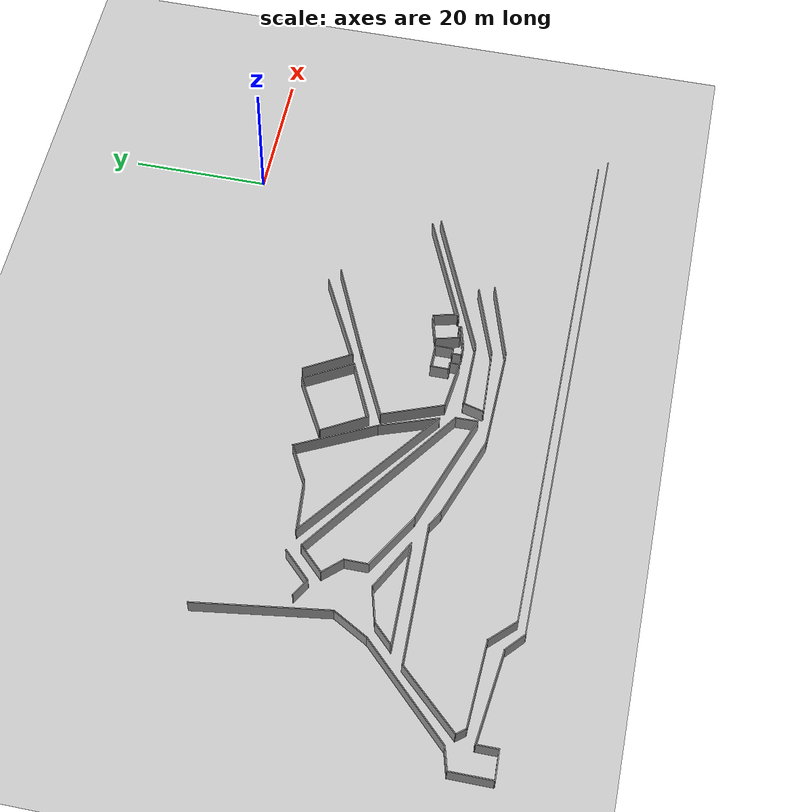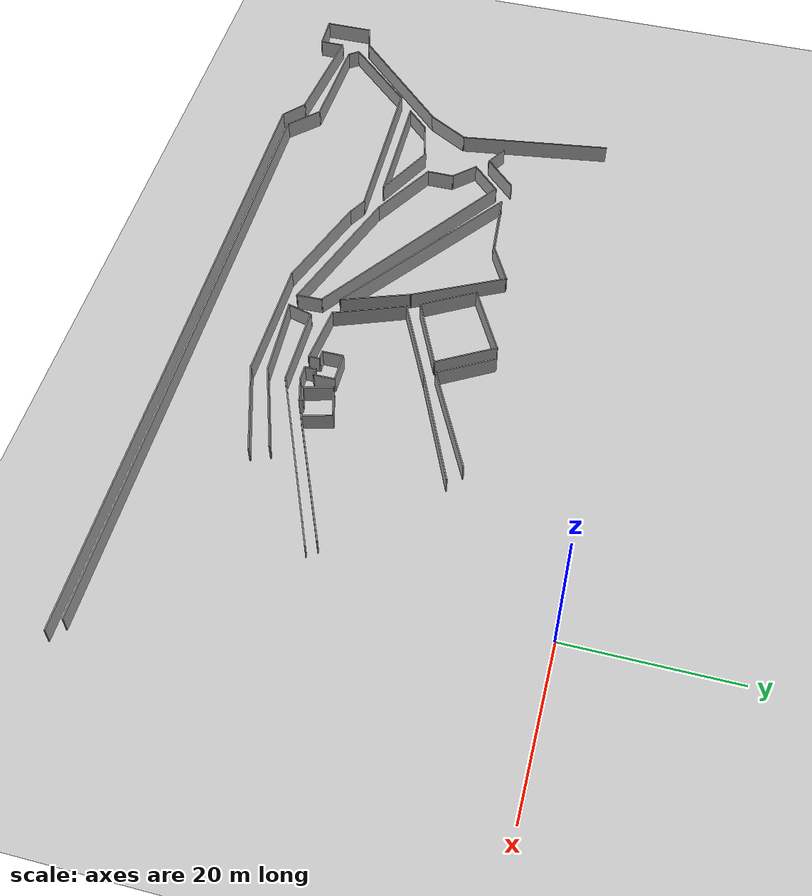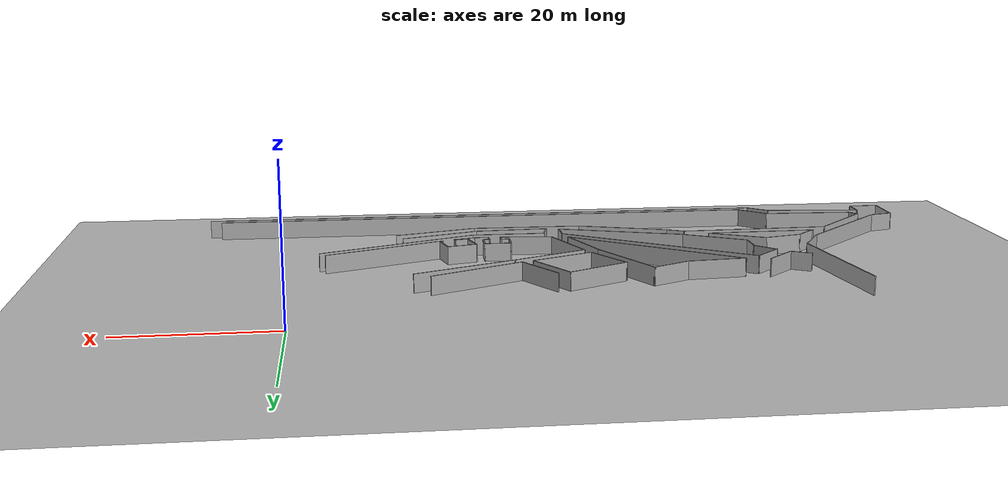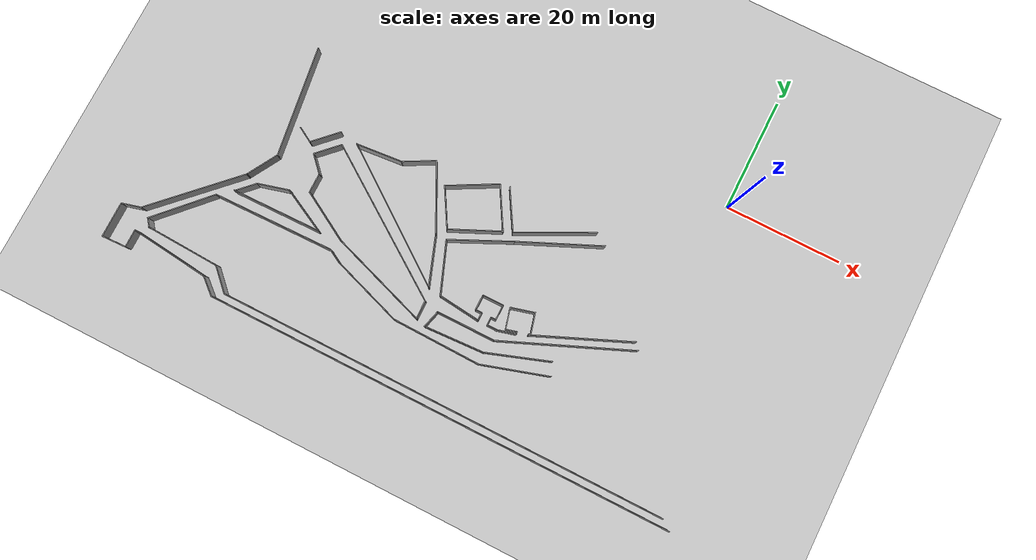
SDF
<sdf version="1.7">
 <world name="default">
  <model name="ground_plane">
   <static>1</static>
   <link name="link">
    <collision name="collision">
     <geometry><plane><normal>0 0 1</normal><size>100 100</size></plane></geometry>
     <surface><friction><ode><mu>100</mu><mu2>50</mu2></ode></friction></surface>
    </collision>
    <visual name="visual">
     <cast_shadows>0</cast_shadows>
     <geometry><plane><normal>0 0 1</normal><size>100 100</size></plane></geometry>
     <material>
      <script><uri>file://media/materials/scripts/gazebo.material</uri><name>Gazebo/Grey</name></script>
     </material>
    </visual>
   </link>
  </model>
  <model name="final_max_v1">
   <pose>-2.52311 0.689104 0 0 -0 0</pose>
   <link name="Wall_0">
    <collision name="Wall_0_Collision">
     <geometry><box><size>6.25 0.15 2.5</size></box></geometry>
     <pose>0 0 1.25 0 -0 0</pose>
    </collision>
    <visual name="Wall_0_Visual">
     <pose>0 0 1.25 0 -0 0</pose>
     <geometry><box><size>6.25 0.15 2.5</size></box></geometry>
     <material>
      <script><uri>file://media/materials/scripts/gazebo.material</uri><name>Gazebo/Grey</name></script>
      <ambient>1 1 1 1</ambient>
     </material>
     <meta><layer>0</layer></meta>
    </visual>
    <pose>-86.0864 -48.4326 0 0 -0 1.5708</pose>
   </link>
   <link name="Wall_100">
    <collision name="Wall_100_Collision">
     <geometry><box><size>19.4552 0.15 2.5</size></box></geometry>
     <pose>0 0 1.25 0 -0 0</pose>
    </collision>
    <visual name="Wall_100_Visual">
     <pose>0 0 1.25 0 -0 0</pose>
     <geometry><box><size>19.4552 0.15 2.5</size></box></geometry>
     <material>
      <script><uri>file://media/materials/scripts/gazebo.material</uri><name>Gazebo/Grey</name></script>
      <ambient>1 1 1 1</ambient>
     </material>
     <meta><layer>0</layer></meta>
    </visual>
    <pose>-68.6774 -17.2731 0 0 -0 1.7136</pose>
   </link>
   <link name="Wall_126">
    <collision name="Wall_126_Collision">
     <geometry><box><size>3.75 0.15 2.5</size></box></geometry>
     <pose>0 0 1.25 0 -0 0</pose>
    </collision>
    <visual name="Wall_126_Visual">
     <pose>0 0 1.25 0 -0 0</pose>
     <geometry><box><size>3.75 0.15 2.5</size></box></geometry>
     <material>
      <script><uri>file://media/materials/scripts/gazebo.material</uri><name>Gazebo/Grey</name></script>
      <ambient>1 1 1 1</ambient>
     </material>
     <meta><layer>0</layer></meta>
    </visual>
    <pose>-69.2284 -33.7829 0 0 -0 0.785398</pose>
   </link>
   <link name="Wall_127">
    <collision name="Wall_127_Collision">
     <geometry><box><size>5.5 0.15 2.5</size></box></geometry>
     <pose>0 0 1.25 0 -0 0</pose>
    </collision>
    <visual name="Wall_127_Visual">
     <pose>0 0 1.25 0 -0 0</pose>
     <geometry><box><size>5.5 0.15 2.5</size></box></geometry>
     <material>
      <script><uri>file://media/materials/scripts/gazebo.material</uri><name>Gazebo/Grey</name></script>
      <ambient>1 1 1 1</ambient>
     </material>
     <meta><layer>0</layer></meta>
    </visual>
    <pose>-65.3717 -31.8178 0 0 -0 0.261799</pose>
   </link>
   <link name="Wall_128">
    <collision name="Wall_128_Collision">
     <geometry><box><size>8.46258 0.15 2.5</size></box></geometry>
     <pose>0 0 1.25 0 -0 0</pose>
    </collision>
    <visual name="Wall_128_Visual">
     <pose>0 0 1.25 0 -0 0</pose>
     <geometry><box><size>8.46258 0.15 2.5</size></box></geometry>
     <material>
      <script><uri>file://media/materials/scripts/gazebo.material</uri><name>Gazebo/Grey</name></script>
      <ambient>1 1 1 1</ambient>
     </material>
     <meta><layer>0</layer></meta>
    </visual>
    <pose>-59.0888 -33.0206 0 0 -0 -0.47347</pose>
   </link>
   <link name="Wall_129">
    <collision name="Wall_129_Collision">
     <geometry><box><size>15.488 0.15 2.5</size></box></geometry>
     <pose>0 0 1.25 0 -0 0</pose>
    </collision>
    <visual name="Wall_129_Visual">
     <pose>0 0 1.25 0 -0 0</pose>
     <geometry><box><size>15.488 0.15 2.5</size></box></geometry>
     <material>
      <script><uri>file://media/materials/scripts/gazebo.material</uri><name>Gazebo/Grey</name></script>
      <ambient>1 1 1 1</ambient>
     </material>
     <meta><layer>0</layer></meta>
    </visual>
    <pose>-63.0581 -35.0458 0 0 -0 -3.12463</pose>
   </link>
   <link name="Wall_142">
    <collision name="Wall_142_Collision">
     <geometry><box><size>3 0.15 2.5</size></box></geometry>
     <pose>0 0 1.25 0 -0 0</pose>
    </collision>
    <visual name="Wall_142_Visual">
     <pose>0 0 1.25 0 -0 0</pose>
     <geometry><box><size>3 0.15 2.5</size></box></geometry>
     <material>
      <script><uri>file://media/materials/scripts/gazebo.material</uri><name>Gazebo/Grey</name></script>
      <ambient>1 1 1 1</ambient>
     </material>
     <meta><layer>0</layer></meta>
    </visual>
    <pose>-64.8763 -21.7565 0 0 -0 2.61799</pose>
   </link>
   <link name="Wall_2">
    <collision name="Wall_2_Collision">
     <geometry><box><size>3.25 0.15 2.5</size></box></geometry>
     <pose>0 0 1.25 0 -0 0</pose>
    </collision>
    <visual name="Wall_2_Visual">
     <pose>0 0 1.25 0 -0 0</pose>
     <geometry><box><size>3.25 0.15 2.5</size></box></geometry>
     <material>
      <script><uri>file://media/materials/scripts/gazebo.material</uri><name>Gazebo/Grey</name></script>
      <ambient>1 1 1 1</ambient>
     </material>
     <meta><layer>0</layer></meta>
    </visual>
    <pose>-81.869 -49.7753 0 0 -0 1.5708</pose>
   </link>
   <link name="Wall_3">
    <collision name="Wall_3_Collision">
     <geometry><box><size>13.848 0.15 2.5</size></box></geometry>
     <pose>0 0 1.25 0 -0 0</pose>
    </collision>
    <visual name="Wall_3_Visual">
     <pose>0 0 1.25 0 -0 0</pose>
     <geometry><box><size>13.848 0.15 2.5</size></box></geometry>
     <material>
      <script><uri>file://media/materials/scripts/gazebo.material</uri><name>Gazebo/Grey</name></script>
      <ambient>1 1 1 1</ambient>
     </material>
     <meta><layer>0</layer></meta>
    </visual>
    <pose>-75.0629 -48.9907 0 0 -0 -0.111993</pose>
   </link>
   <link name="Wall_4">
    <collision name="Wall_4_Collision">
     <geometry><box><size>3.68163 0.15 2.5</size></box></geometry>
     <pose>0 0 1.25 0 -0 0</pose>
    </collision>
    <visual name="Wall_4_Visual">
     <pose>0 0 1.25 0 -0 0</pose>
     <geometry><box><size>3.68163 0.15 2.5</size></box></geometry>
     <material>
      <script><uri>file://media/materials/scripts/gazebo.material</uri><name>Gazebo/Grey</name></script>
      <ambient>1 1 1 1</ambient>
     </material>
     <meta><layer>0</layer></meta>
    </visual>
    <pose>-66.923 -50.9134 0 0 -0 -0.71465</pose>
   </link>
   <link name="Wall_478">
    <collision name="Wall_478_Collision">
     <geometry><box><size>5.5 0.15 2.5</size></box></geometry>
     <pose>0 0 1.25 0 -0 0</pose>
    </collision>
    <visual name="Wall_478_Visual">
     <pose>0 0 1.25 0 -0 0</pose>
     <geometry><box><size>5.5 0.15 2.5</size></box></geometry>
     <material>
      <script><uri>file://media/materials/scripts/gazebo.material</uri><name>Gazebo/Grey</name></script>
      <ambient>1 1 1 1</ambient>
     </material>
     <meta><layer>0</layer></meta>
    </visual>
    <pose>-61.7507 -20.5775 0 0 -0 0.785398</pose>
   </link>
   <link name="Wall_481">
    <collision name="Wall_481_Collision">
     <geometry><box><size>5 0.15 2.5</size></box></geometry>
     <pose>0 0 1.25 0 -0 0</pose>
    </collision>
    <visual name="Wall_481_Visual">
     <pose>0 0 1.25 0 -0 0</pose>
     <geometry><box><size>5 0.15 2.5</size></box></geometry>
     <material>
      <script><uri>file://media/materials/scripts/gazebo.material</uri><name>Gazebo/Grey</name></script>
      <ambient>1 1 1 1</ambient>
     </material>
     <meta><layer>0</layer></meta>
    </visual>
    <pose>-60.4316 -22.231 0 0 -0 0.785398</pose>
   </link>
   <link name="Wall_482">
    <collision name="Wall_482_Collision">
     <geometry><box><size>29.4407 0.15 2.5</size></box></geometry>
     <pose>0 0 1.25 0 -0 0</pose>
    </collision>
    <visual name="Wall_482_Visual">
     <pose>0 0 1.25 0 -0 0</pose>
     <geometry><box><size>29.4407 0.15 2.5</size></box></geometry>
     <material>
      <script><uri>file://media/materials/scripts/gazebo.material</uri><name>Gazebo/Grey</name></script>
      <ambient>1 1 1 1</ambient>
     </material>
     <meta><layer>0</layer></meta>
    </visual>
    <pose>-46.6969 -28.8832 0 0 -0 -0.60809</pose>
   </link>
   <link name="Wall_484">
    <collision name="Wall_484_Collision">
     <geometry><box><size>3.28141 0.15 2.5</size></box></geometry>
     <pose>0 0 1.25 0 -0 0</pose>
    </collision>
    <visual name="Wall_484_Visual">
     <pose>0 0 1.25 0 -0 0</pose>
     <geometry><box><size>3.28141 0.15 2.5</size></box></geometry>
     <material>
      <script><uri>file://media/materials/scripts/gazebo.material</uri><name>Gazebo/Grey</name></script>
      <ambient>1 1 1 1</ambient>
     </material>
     <meta><layer>0</layer></meta>
    </visual>
    <pose>-34.6377 -38.8153 0 0 -0 1.59579</pose>
   </link>
   <link name="Wall_486">
    <collision name="Wall_486_Collision">
     <geometry><box><size>18.0929 0.15 2.5</size></box></geometry>
     <pose>0 0 1.25 0 -0 0</pose>
    </collision>
    <visual name="Wall_486_Visual">
     <pose>0 0 1.25 0 -0 0</pose>
     <geometry><box><size>18.0929 0.15 2.5</size></box></geometry>
     <material>
      <script><uri>file://media/materials/scripts/gazebo.material</uri><name>Gazebo/Grey</name></script>
      <ambient>1 1 1 1</ambient>
     </material>
     <meta><layer>0</layer></meta>
    </visual>
    <pose>-43.0899 -37.4849 0 0 -0 2.81295</pose>
   </link>
   <link name="Wall_487">
    <collision name="Wall_487_Collision">
     <geometry><box><size>9.5 0.15 2.5</size></box></geometry>
     <pose>0 0 1.25 0 -0 0</pose>
    </collision>
    <visual name="Wall_487_Visual">
     <pose>0 0 1.25 0 -0 0</pose>
     <geometry><box><size>9.5 0.15 2.5</size></box></geometry>
     <material>
      <script><uri>file://media/materials/scripts/gazebo.material</uri><name>Gazebo/Grey</name></script>
      <ambient>1 1 1 1</ambient>
     </material>
     <meta><layer>0</layer></meta>
    </visual>
    <pose>-55.6298 -32.2518 0 0 -0 2.61799</pose>
   </link>
   <link name="Wall_488">
    <collision name="Wall_488_Collision">
     <geometry><box><size>3.5 0.15 2.5</size></box></geometry>
     <pose>0 0 1.25 0 -0 0</pose>
    </collision>
    <visual name="Wall_488_Visual">
     <pose>0 0 1.25 0 -0 0</pose>
     <geometry><box><size>3.5 0.15 2.5</size></box></geometry>
     <material>
      <script><uri>file://media/materials/scripts/gazebo.material</uri><name>Gazebo/Grey</name></script>
      <ambient>1 1 1 1</ambient>
     </material>
     <meta><layer>0</layer></meta>
    </visual>
    <pose>-59.6785 -28.2393 0 0 -0 1.5708</pose>
   </link>
   <link name="Wall_491">
    <collision name="Wall_491_Collision">
     <geometry><box><size>3.74817 0.15 2.5</size></box></geometry>
     <pose>0 0 1.25 0 -0 0</pose>
    </collision>
    <visual name="Wall_491_Visual">
     <pose>0 0 1.25 0 -0 0</pose>
     <geometry><box><size>3.74817 0.15 2.5</size></box></geometry>
     <material>
      <script><uri>file://media/materials/scripts/gazebo.material</uri><name>Gazebo/Grey</name></script>
      <ambient>1 1 1 1</ambient>
     </material>
     <meta><layer>0</layer></meta>
    </visual>
    <pose>-60.9124 -25.255 0 0 -0 -0.814998</pose>
   </link>
   <link name="Wall_493">
    <collision name="Wall_493_Collision">
     <geometry><box><size>3.25 0.15 2.5</size></box></geometry>
     <pose>0 0 1.25 0 -0 0</pose>
    </collision>
    <visual name="Wall_493_Visual">
     <pose>0 0 1.25 0 -0 0</pose>
     <geometry><box><size>3.25 0.15 2.5</size></box></geometry>
     <material>
      <script><uri>file://media/materials/scripts/gazebo.material</uri><name>Gazebo/Grey</name></script>
      <ambient>1 1 1 1</ambient>
     </material>
     <meta><layer>0</layer></meta>
    </visual>
    <pose>-32.4716 -39.3814 0 0 -0 1.309</pose>
   </link>
   <link name="Wall_494">
    <collision name="Wall_494_Collision">
     <geometry><box><size>10.25 0.15 2.5</size></box></geometry>
     <pose>0 0 1.25 0 -0 0</pose>
    </collision>
    <visual name="Wall_494_Visual">
     <pose>0 0 1.25 0 -0 0</pose>
     <geometry><box><size>10.25 0.15 2.5</size></box></geometry>
     <material>
      <script><uri>file://media/materials/scripts/gazebo.material</uri><name>Gazebo/Grey</name></script>
      <ambient>1 1 1 1</ambient>
     </material>
     <meta><layer>0</layer></meta>
    </visual>
    <pose>-27.0205 -37.8842 0 0 -0 0</pose>
   </link>
   <link name="Wall_496">
    <collision name="Wall_496_Collision">
     <geometry><box><size>23.1194 0.15 2.5</size></box></geometry>
     <pose>0 0 1.25 0 -0 0</pose>
    </collision>
    <visual name="Wall_496_Visual">
     <pose>0 0 1.25 0 -0 0</pose>
     <geometry><box><size>23.1194 0.15 2.5</size></box></geometry>
     <material>
      <script><uri>file://media/materials/scripts/gazebo.material</uri><name>Gazebo/Grey</name></script>
      <ambient>1 1 1 1</ambient>
     </material>
     <meta><layer>0</layer></meta>
    </visual>
    <pose>-11.3836 -33.4327 0 0 -0 0.398025</pose>
   </link>
   <link name="Wall_501">
    <collision name="Wall_501_Collision">
     <geometry><box><size>10.3347 0.15 2.5</size></box></geometry>
     <pose>0 0 1.25 0 -0 0</pose>
    </collision>
    <visual name="Wall_501_Visual">
     <pose>0 0 1.25 0 -0 0</pose>
     <geometry><box><size>10.3347 0.15 2.5</size></box></geometry>
     <material>
      <script><uri>file://media/materials/scripts/gazebo.material</uri><name>Gazebo/Grey</name></script>
      <ambient>1 1 1 1</ambient>
     </material>
     <meta><layer>0</layer></meta>
    </visual>
    <pose>-27.7872 -40.6165 0 0 -0 0.051487</pose>
   </link>
   <link name="Wall_502">
    <collision name="Wall_502_Collision">
     <geometry><box><size>11.2662 0.15 2.5</size></box></geometry>
     <pose>0 0 1.25 0 -0 0</pose>
    </collision>
    <visual name="Wall_502_Visual">
     <pose>0 0 1.25 0 -0 0</pose>
     <geometry><box><size>11.2662 0.15 2.5</size></box></geometry>
     <material>
      <script><uri>file://media/materials/scripts/gazebo.material</uri><name>Gazebo/Grey</name></script>
      <ambient>1 1 1 1</ambient>
     </material>
     <meta><layer>0</layer></meta>
    </visual>
    <pose>-17.4514 -38.5302 0 0 -0 0.334408</pose>
   </link>
   <link name="Wall_510">
    <collision name="Wall_510_Collision">
     <geometry><box><size>7.39808 0.15 2.5</size></box></geometry>
     <pose>0 0 1.25 0 -0 0</pose>
    </collision>
    <visual name="Wall_510_Visual">
     <pose>0 0 1.25 0 -0 0</pose>
     <geometry><box><size>7.39808 0.15 2.5</size></box></geometry>
     <material>
      <script><uri>file://media/materials/scripts/gazebo.material</uri><name>Gazebo/Grey</name></script>
      <ambient>1 1 1 1</ambient>
     </material>
     <meta><layer>0</layer></meta>
    </visual>
    <pose>-29.3327 -35.7676 0 0 -0 3.03199</pose>
   </link>
   <link name="Wall_512">
    <collision name="Wall_512_Collision">
     <geometry><box><size>1.5 0.15 2.5</size></box></geometry>
     <pose>0 0 1.25 0 -0 0</pose>
    </collision>
    <visual name="Wall_512_Visual">
     <pose>0 0 1.25 0 -0 0</pose>
     <geometry><box><size>1.5 0.15 2.5</size></box></geometry>
     <material>
      <script><uri>file://media/materials/scripts/gazebo.material</uri><name>Gazebo/Grey</name></script>
      <ambient>1 1 1 1</ambient>
     </material>
     <meta><layer>0</layer></meta>
    </visual>
    <pose>-25.7305 -35.489 0 0 -0 1.5708</pose>
   </link>
   <link name="Wall_513">
    <collision name="Wall_513_Collision">
     <geometry><box><size>1.25 0.15 2.5</size></box></geometry>
     <pose>0 0 1.25 0 -0 0</pose>
    </collision>
    <visual name="Wall_513_Visual">
     <pose>0 0 1.25 0 -0 0</pose>
     <geometry><box><size>1.25 0.15 2.5</size></box></geometry>
     <material>
      <script><uri>file://media/materials/scripts/gazebo.material</uri><name>Gazebo/Grey</name></script>
      <ambient>1 1 1 1</ambient>
     </material>
     <meta><layer>0</layer></meta>
    </visual>
    <pose>-26.2805 -34.814 0 0 -0 3.14159</pose>
   </link>
   <link name="Wall_514">
    <collision name="Wall_514_Collision">
     <geometry><box><size>2.75 0.15 2.5</size></box></geometry>
     <pose>0 0 1.25 0 -0 0</pose>
    </collision>
    <visual name="Wall_514_Visual">
     <pose>0 0 1.25 0 -0 0</pose>
     <geometry><box><size>2.75 0.15 2.5</size></box></geometry>
     <material>
      <script><uri>file://media/materials/scripts/gazebo.material</uri><name>Gazebo/Grey</name></script>
      <ambient>1 1 1 1</ambient>
     </material>
     <meta><layer>0</layer></meta>
    </visual>
    <pose>-26.8305 -33.514 0 0 -0 1.5708</pose>
   </link>
   <link name="Wall_515">
    <collision name="Wall_515_Collision">
     <geometry><box><size>3.75 0.15 2.5</size></box></geometry>
     <pose>0 0 1.25 0 -0 0</pose>
    </collision>
    <visual name="Wall_515_Visual">
     <pose>0 0 1.25 0 -0 0</pose>
     <geometry><box><size>3.75 0.15 2.5</size></box></geometry>
     <material>
      <script><uri>file://media/materials/scripts/gazebo.material</uri><name>Gazebo/Grey</name></script>
      <ambient>1 1 1 1</ambient>
     </material>
     <meta><layer>0</layer></meta>
    </visual>
    <pose>-25.0305 -32.214 0 0 -0 0</pose>
   </link>
   <link name="Wall_525">
    <collision name="Wall_525_Collision">
     <geometry><box><size>2.75 0.15 2.5</size></box></geometry>
     <pose>0 0 1.25 0 -0 0</pose>
    </collision>
    <visual name="Wall_525_Visual">
     <pose>0 0 1.25 0 -0 0</pose>
     <geometry><box><size>2.75 0.15 2.5</size></box></geometry>
     <material>
      <script><uri>file://media/materials/scripts/gazebo.material</uri><name>Gazebo/Grey</name></script>
      <ambient>1 1 1 1</ambient>
     </material>
     <meta><layer>0</layer></meta>
    </visual>
    <pose>-23.2305 -33.514 0 0 -0 -1.5708</pose>
   </link>
   <link name="Wall_526">
    <collision name="Wall_526_Collision">
     <geometry><box><size>1 0.15 2.5</size></box></geometry>
     <pose>0 0 1.25 0 -0 0</pose>
    </collision>
    <visual name="Wall_526_Visual">
     <pose>0 0 1.25 0 -0 0</pose>
     <geometry><box><size>1 0.15 2.5</size></box></geometry>
     <material>
      <script><uri>file://media/materials/scripts/gazebo.material</uri><name>Gazebo/Grey</name></script>
      <ambient>1 1 1 1</ambient>
     </material>
     <meta><layer>0</layer></meta>
    </visual>
    <pose>-23.6555 -34.814 0 0 -0 3.14159</pose>
   </link>
   <link name="Wall_527">
    <collision name="Wall_527_Collision">
     <geometry><box><size>0.15 0.15 2.5</size></box></geometry>
     <pose>0 0 1.25 0 -0 0</pose>
    </collision>
    <visual name="Wall_527_Visual">
     <pose>0 0 1.25 0 -0 0</pose>
     <geometry><box><size>0.15 0.15 2.5</size></box></geometry>
     <material>
      <script><uri>file://media/materials/scripts/gazebo.material</uri><name>Gazebo/Grey</name></script>
      <ambient>0 0 0 1</ambient>
     </material>
     <meta><layer>0</layer></meta>
    </visual>
    <pose>-24.0805 -34.814 0 0 -0 0</pose>
   </link>
   <link name="Wall_528">
    <collision name="Wall_528_Collision">
     <geometry><box><size>1.5 0.15 2.5</size></box></geometry>
     <pose>0 0 1.25 0 -0 0</pose>
    </collision>
    <visual name="Wall_528_Visual">
     <pose>0 0 1.25 0 -0 0</pose>
     <geometry><box><size>1.5 0.15 2.5</size></box></geometry>
     <material>
      <script><uri>file://media/materials/scripts/gazebo.material</uri><name>Gazebo/Grey</name></script>
      <ambient>1 1 1 1</ambient>
     </material>
     <meta><layer>0</layer></meta>
    </visual>
    <pose>-24.0805 -35.489 0 0 -0 -1.5708</pose>
   </link>
   <link name="Wall_530">
    <collision name="Wall_530_Collision">
     <geometry><box><size>2 0.15 2.5</size></box></geometry>
     <pose>0 0 1.25 0 -0 0</pose>
    </collision>
    <visual name="Wall_530_Visual">
     <pose>0 0 1.25 0 -0 0</pose>
     <geometry><box><size>2 0.15 2.5</size></box></geometry>
     <material>
      <script><uri>file://media/materials/scripts/gazebo.material</uri><name>Gazebo/Grey</name></script>
      <ambient>1 1 1 1</ambient>
     </material>
     <meta><layer>0</layer></meta>
    </visual>
    <pose>-23.1555 -36.164 0 0 -0 0</pose>
   </link>
   <link name="Wall_539">
    <collision name="Wall_539_Collision">
     <geometry><box><size>14.8503 0.15 2.5</size></box></geometry>
     <pose>0 0 1.25 0 -0 0</pose>
    </collision>
    <visual name="Wall_539_Visual">
     <pose>0 0 1.25 0 -0 0</pose>
     <geometry><box><size>14.8503 0.15 2.5</size></box></geometry>
     <material>
      <script><uri>file://media/materials/scripts/gazebo.material</uri><name>Gazebo/Grey</name></script>
      <ambient>1 1 1 1</ambient>
     </material>
     <meta><layer>0</layer></meta>
    </visual>
    <pose>-19.5401 -19.1375 0 0 -0 0.41761</pose>
   </link>
   <link name="Wall_546">
    <collision name="Wall_546_Collision">
     <geometry><box><size>13.8284 0.15 2.5</size></box></geometry>
     <pose>0 0 1.25 0 -0 0</pose>
    </collision>
    <visual name="Wall_546_Visual">
     <pose>0 0 1.25 0 -0 0</pose>
     <geometry><box><size>13.8284 0.15 2.5</size></box></geometry>
     <material>
      <script><uri>file://media/materials/scripts/gazebo.material</uri><name>Gazebo/Grey</name></script>
      <ambient>1 1 1 1</ambient>
     </material>
     <meta><layer>0</layer></meta>
    </visual>
    <pose>-21.0345 -17.8189 0 0 -0 0.467525</pose>
   </link>
   <link name="Wall_552">
    <collision name="Wall_552_Collision">
     <geometry><box><size>9.30829 0.15 2.5</size></box></geometry>
     <pose>0 0 1.25 0 -0 0</pose>
    </collision>
    <visual name="Wall_552_Visual">
     <pose>0 0 1.25 0 -0 0</pose>
     <geometry><box><size>9.30829 0.15 2.5</size></box></geometry>
     <material>
      <script><uri>file://media/materials/scripts/gazebo.material</uri><name>Gazebo/Grey</name></script>
      <ambient>1 1 1 1</ambient>
     </material>
     <meta><layer>0</layer></meta>
    </visual>
    <pose>-34.5805 -31.0979 0 0 -0 -1.20324</pose>
   </link>
   <link name="Wall_556">
    <collision name="Wall_556_Collision">
     <geometry><box><size>11.1725 0.15 2.5</size></box></geometry>
     <pose>0 0 1.25 0 -0 0</pose>
    </collision>
    <visual name="Wall_556_Visual">
     <pose>0 0 1.25 0 -0 0</pose>
     <geometry><box><size>11.1725 0.15 2.5</size></box></geometry>
     <material>
      <script><uri>file://media/materials/scripts/gazebo.material</uri><name>Gazebo/Grey</name></script>
      <ambient>1 1 1 1</ambient>
     </material>
     <meta><layer>0</layer></meta>
    </visual>
    <pose>-31.2423 -24.4715 0 0 -0 -2.70048</pose>
   </link>
   <link name="Wall_559">
    <collision name="Wall_559_Collision">
     <geometry><box><size>7.67149 0.15 2.5</size></box></geometry>
     <pose>0 0 1.25 0 -0 0</pose>
    </collision>
    <visual name="Wall_559_Visual">
     <pose>0 0 1.25 0 -0 0</pose>
     <geometry><box><size>7.67149 0.15 2.5</size></box></geometry>
     <material>
      <script><uri>file://media/materials/scripts/gazebo.material</uri><name>Gazebo/Grey</name></script>
      <ambient>1 1 1 1</ambient>
     </material>
     <meta><layer>0</layer></meta>
    </visual>
    <pose>-29.0376 -17.6544 0 0 -0 2.09976</pose>
   </link>
   <link name="Wall_564">
    <collision name="Wall_564_Collision">
     <geometry><box><size>9.25649 0.15 2.5</size></box></geometry>
     <pose>0 0 1.25 0 -0 0</pose>
    </collision>
    <visual name="Wall_564_Visual">
     <pose>0 0 1.25 0 -0 0</pose>
     <geometry><box><size>9.25649 0.15 2.5</size></box></geometry>
     <material>
      <script><uri>file://media/materials/scripts/gazebo.material</uri><name>Gazebo/Grey</name></script>
      <ambient>1 1 1 1</ambient>
     </material>
     <meta><layer>0</layer></meta>
    </visual>
    <pose>-32.7796 -23.3619 0 0 -0 0.42944</pose>
   </link>
   <link name="Wall_565">
    <collision name="Wall_565_Collision">
     <geometry><box><size>8 0.15 2.5</size></box></geometry>
     <pose>0 0 1.25 0 -0 0</pose>
    </collision>
    <visual name="Wall_565_Visual">
     <pose>0 0 1.25 0 -0 0</pose>
     <geometry><box><size>8 0.15 2.5</size></box></geometry>
     <material>
      <script><uri>file://media/materials/scripts/gazebo.material</uri><name>Gazebo/Grey</name></script>
      <ambient>1 1 1 1</ambient>
     </material>
     <meta><layer>0</layer></meta>
    </visual>
    <pose>-30.6023 -18.0669 0 0 -0 2.0944</pose>
   </link>
   <link name="Wall_566">
    <collision name="Wall_566_Collision">
     <geometry><box><size>9.23539 0.15 2.5</size></box></geometry>
     <pose>0 0 1.25 0 -0 0</pose>
    </collision>
    <visual name="Wall_566_Visual">
     <pose>0 0 1.25 0 -0 0</pose>
     <geometry><box><size>9.23539 0.15 2.5</size></box></geometry>
     <material>
      <script><uri>file://media/materials/scripts/gazebo.material</uri><name>Gazebo/Grey</name></script>
      <ambient>1 1 1 1</ambient>
     </material>
     <meta><layer>0</layer></meta>
    </visual>
    <pose>-36.5605 -16.8289 0 0 -0 -2.6458</pose>
   </link>
   <link name="Wall_567">
    <collision name="Wall_567_Collision">
     <geometry><box><size>7.39646 0.15 2.5</size></box></geometry>
     <pose>0 0 1.25 0 -0 0</pose>
    </collision>
    <visual name="Wall_567_Visual">
     <pose>0 0 1.25 0 -0 0</pose>
     <geometry><box><size>7.39646 0.15 2.5</size></box></geometry>
     <material>
      <script><uri>file://media/materials/scripts/gazebo.material</uri><name>Gazebo/Grey</name></script>
      <ambient>1 1 1 1</ambient>
     </material>
     <meta><layer>0</layer></meta>
    </visual>
    <pose>-38.7378 -22.1238 0 0 -0 -1.04503</pose>
   </link>
   <link name="Wall_569">
    <collision name="Wall_569_Collision">
     <geometry><box><size>26.6614 0.15 2.5</size></box></geometry>
     <pose>0 0 1.25 0 -0 0</pose>
    </collision>
    <visual name="Wall_569_Visual">
     <pose>0 0 1.25 0 -0 0</pose>
     <geometry><box><size>26.6614 0.15 2.5</size></box></geometry>
     <material>
      <script><uri>file://media/materials/scripts/gazebo.material</uri><name>Gazebo/Grey</name></script>
      <ambient>1 1 1 1</ambient>
     </material>
     <meta><layer>0</layer></meta>
    </visual>
    <pose>-45.8954 -27.1535 0 0 -0 -0.634161</pose>
   </link>
   <link name="Wall_570">
    <collision name="Wall_570_Collision">
     <geometry><box><size>8.86336 0.15 2.5</size></box></geometry>
     <pose>0 0 1.25 0 -0 0</pose>
    </collision>
    <visual name="Wall_570_Visual">
     <pose>0 0 1.25 0 -0 0</pose>
     <geometry><box><size>8.86336 0.15 2.5</size></box></geometry>
     <material>
      <script><uri>file://media/materials/scripts/gazebo.material</uri><name>Gazebo/Grey</name></script>
      <ambient>1 1 1 1</ambient>
     </material>
     <meta><layer>0</layer></meta>
    </visual>
    <pose>-36.6872 -30.9064 0 0 -0 1.91501</pose>
   </link>
   <link name="Wall_571">
    <collision name="Wall_571_Collision">
     <geometry><box><size>12.3657 0.15 2.5</size></box></geometry>
     <pose>0 0 1.25 0 -0 0</pose>
    </collision>
    <visual name="Wall_571_Visual">
     <pose>0 0 1.25 0 -0 0</pose>
     <geometry><box><size>12.3657 0.15 2.5</size></box></geometry>
     <material>
      <script><uri>file://media/materials/scripts/gazebo.material</uri><name>Gazebo/Grey</name></script>
      <ambient>1 1 1 1</ambient>
     </material>
     <meta><layer>0</layer></meta>
    </visual>
    <pose>-40.9044 -21.35 0 0 -0 2.03728</pose>
   </link>
   <link name="Wall_572">
    <collision name="Wall_572_Collision">
     <geometry><box><size>5.86248 0.15 2.5</size></box></geometry>
     <pose>0 0 1.25 0 -0 0</pose>
    </collision>
    <visual name="Wall_572_Visual">
     <pose>0 0 1.25 0 -0 0</pose>
     <geometry><box><size>5.86248 0.15 2.5</size></box></geometry>
     <material>
      <script><uri>file://media/materials/scripts/gazebo.material</uri><name>Gazebo/Grey</name></script>
      <ambient>1 1 1 1</ambient>
     </material>
     <meta><layer>0</layer></meta>
    </visual>
    <pose>-46.1662 -17.2489 0 0 -0 -2.64765</pose>
   </link>
   <link name="Wall_573">
    <collision name="Wall_573_Collision">
     <geometry><box><size>8.07338 0.15 2.5</size></box></geometry>
     <pose>0 0 1.25 0 -0 0</pose>
    </collision>
    <visual name="Wall_573_Visual">
     <pose>0 0 1.25 0 -0 0</pose>
     <geometry><box><size>8.07338 0.15 2.5</size></box></geometry>
     <material>
      <script><uri>file://media/materials/scripts/gazebo.material</uri><name>Gazebo/Grey</name></script>
      <ambient>1 1 1 1</ambient>
     </material>
     <meta><layer>0</layer></meta>
    </visual>
    <pose>-52.6274 -18.9513 0 0 -0 -3.05358</pose>
   </link>
   <link name="Wall_6">
    <collision name="Wall_6_Collision">
     <geometry><box><size>81.25 0.15 2.5</size></box></geometry>
     <pose>0 0 1.25 0 -0 0</pose>
    </collision>
    <visual name="Wall_6_Visual">
     <pose>0 0 1.25 0 -0 0</pose>
     <geometry><box><size>81.25 0.15 2.5</size></box></geometry>
     <material>
      <script><uri>file://media/materials/scripts/gazebo.material</uri><name>Gazebo/Grey</name></script>
      <ambient>1 1 1 1</ambient>
     </material>
     <meta><layer>0</layer></meta>
    </visual>
    <pose>-25.0393 -52.0706 0 0 -0 0</pose>
   </link>
   <link name="Wall_645">
    <collision name="Wall_645_Collision">
     <geometry><box><size>3 0.15 2.5</size></box></geometry>
     <pose>0 0 1.25 0 -0 0</pose>
    </collision>
    <visual name="Wall_645_Visual">
     <pose>0 0 1.25 0 -0 0</pose>
     <geometry><box><size>3 0.15 2.5</size></box></geometry>
     <material>
      <script><uri>file://media/materials/scripts/gazebo.material</uri><name>Gazebo/Grey</name></script>
      <ambient>1 1 1 1</ambient>
     </material>
     <meta><layer>0</layer></meta>
    </visual>
    <pose>-20.6198 -35.7137 0 0 -0 0.261799</pose>
   </link>
   <link name="Wall_646">
    <collision name="Wall_646_Collision">
     <geometry><box><size>0.5 0.15 2.5</size></box></geometry>
     <pose>0 0 1.25 0 -0 0</pose>
    </collision>
    <visual name="Wall_646_Visual">
     <pose>0 0 1.25 0 -0 0</pose>
     <geometry><box><size>0.5 0.15 2.5</size></box></geometry>
     <material>
      <script><uri>file://media/materials/scripts/gazebo.material</uri><name>Gazebo/Grey</name></script>
      <ambient>1 1 1 1</ambient>
     </material>
     <meta><layer>0</layer></meta>
    </visual>
    <pose>-19.2886 -35.1758 0 0 -0 1.8326</pose>
   </link>
   <link name="Wall_647">
    <collision name="Wall_647_Collision">
     <geometry><box><size>2 0.15 2.5</size></box></geometry>
     <pose>0 0 1.25 0 -0 0</pose>
    </collision>
    <visual name="Wall_647_Visual">
     <pose>0 0 1.25 0 -0 0</pose>
     <geometry><box><size>2 0.15 2.5</size></box></geometry>
     <material>
      <script><uri>file://media/materials/scripts/gazebo.material</uri><name>Gazebo/Grey</name></script>
      <ambient>1 1 1 1</ambient>
     </material>
     <meta><layer>0</layer></meta>
    </visual>
    <pose>-20.2274 -35.2462 0 0 -0 -2.87979</pose>
   </link>
   <link name="Wall_648">
    <collision name="Wall_648_Collision">
     <geometry><box><size>3.75 0.15 2.5</size></box></geometry>
     <pose>0 0 1.25 0 -0 0</pose>
    </collision>
    <visual name="Wall_648_Visual">
     <pose>0 0 1.25 0 -0 0</pose>
     <geometry><box><size>3.75 0.15 2.5</size></box></geometry>
     <material>
      <script><uri>file://media/materials/scripts/gazebo.material</uri><name>Gazebo/Grey</name></script>
      <ambient>1 1 1 1</ambient>
     </material>
     <meta><layer>0</layer></meta>
    </visual>
    <pose>-21.5867 -33.7469 0 0 -0 1.8326</pose>
   </link>
   <link name="Wall_649">
    <collision name="Wall_649_Collision">
     <geometry><box><size>4.25 0.15 2.5</size></box></geometry>
     <pose>0 0 1.25 0 -0 0</pose>
    </collision>
    <visual name="Wall_649_Visual">
     <pose>0 0 1.25 0 -0 0</pose>
     <geometry><box><size>4.25 0.15 2.5</size></box></geometry>
     <material>
      <script><uri>file://media/materials/scripts/gazebo.material</uri><name>Gazebo/Grey</name></script>
      <ambient>1 1 1 1</ambient>
     </material>
     <meta><layer>0</layer></meta>
    </visual>
    <pose>-20.0725 -31.4777 0 0 -0 0.261799</pose>
   </link>
   <link name="Wall_650">
    <collision name="Wall_650_Collision">
     <geometry><box><size>3.75 0.15 2.5</size></box></geometry>
     <pose>0 0 1.25 0 -0 0</pose>
    </collision>
    <visual name="Wall_650_Visual">
     <pose>0 0 1.25 0 -0 0</pose>
     <geometry><box><size>3.75 0.15 2.5</size></box></geometry>
     <material>
      <script><uri>file://media/materials/scripts/gazebo.material</uri><name>Gazebo/Grey</name></script>
      <ambient>1 1 1 1</ambient>
     </material>
     <meta><layer>0</layer></meta>
    </visual>
    <pose>-17.6264 -32.6858 0 0 -0 -1.309</pose>
   </link>
   <link name="Wall_651">
    <collision name="Wall_651_Collision">
     <geometry><box><size>0.5 0.15 2.5</size></box></geometry>
     <pose>0 0 1.25 0 -0 0</pose>
    </collision>
    <visual name="Wall_651_Visual">
     <pose>0 0 1.25 0 -0 0</pose>
     <geometry><box><size>0.5 0.15 2.5</size></box></geometry>
     <material>
      <script><uri>file://media/materials/scripts/gazebo.material</uri><name>Gazebo/Grey</name></script>
      <ambient>1 1 1 1</ambient>
     </material>
     <meta><layer>0</layer></meta>
    </visual>
    <pose>-17.3296 -34.4697 0 0 -0 -2.87979</pose>
   </link>
   <link name="Wall_652">
    <collision name="Wall_652_Collision">
     <geometry><box><size>0.25 0.15 2.5</size></box></geometry>
     <pose>0 0 1.25 0 -0 0</pose>
    </collision>
    <visual name="Wall_652_Visual">
     <pose>0 0 1.25 0 -0 0</pose>
     <geometry><box><size>0.25 0.15 2.5</size></box></geometry>
     <material>
      <script><uri>file://media/materials/scripts/gazebo.material</uri><name>Gazebo/Grey</name></script>
      <ambient>1 1 1 1</ambient>
     </material>
     <meta><layer>0</layer></meta>
    </visual>
    <pose>-17.4857 -34.5633 0 0 -0 -1.309</pose>
   </link>
   <link name="Wall_653">
    <collision name="Wall_653_Collision">
     <geometry><box><size>17.3947 0.15 2.5</size></box></geometry>
     <pose>0 0 1.25 0 -0 0</pose>
    </collision>
    <visual name="Wall_653_Visual">
     <pose>0 0 1.25 0 -0 0</pose>
     <geometry><box><size>17.3947 0.15 2.5</size></box></geometry>
     <material>
      <script><uri>file://media/materials/scripts/gazebo.material</uri><name>Gazebo/Grey</name></script>
      <ambient>1 1 1 1</ambient>
     </material>
     <meta><layer>0</layer></meta>
    </visual>
    <pose>-9.5416 -31.229 0 0 -0 0.403134</pose>
   </link>
   <link name="Wall_714">
    <collision name="Wall_714_Collision">
     <geometry><box><size>4.3703 0.15 2.5</size></box></geometry>
     <pose>0 0 1.25 0 -0 0</pose>
    </collision>
    <visual name="Wall_714_Visual">
     <pose>0 0 1.25 0 -0 0</pose>
     <geometry><box><size>4.3703 0.15 2.5</size></box></geometry>
     <material>
      <script><uri>file://media/materials/scripts/gazebo.material</uri><name>Gazebo/Grey</name></script>
      <ambient>1 1 1 1</ambient>
     </material>
     <meta><layer>0</layer></meta>
    </visual>
    <pose>-83.9777 -51.4039 0 0 -0 0.037297</pose>
   </link>
   <link name="Wall_75">
    <collision name="Wall_75_Collision">
     <geometry><box><size>77.75 0.15 2.5</size></box></geometry>
     <pose>0 0 1.25 0 -0 0</pose>
    </collision>
    <visual name="Wall_75_Visual">
     <pose>0 0 1.25 0 -0 0</pose>
     <geometry><box><size>77.75 0.15 2.5</size></box></geometry>
     <material>
      <script><uri>file://media/materials/scripts/gazebo.material</uri><name>Gazebo/Grey</name></script>
      <ambient>1 1 1 1</ambient>
     </material>
     <meta><layer>0</layer></meta>
    </visual>
    <pose>-24.9793 -50.7916 0 0 -0 0</pose>
   </link>
   <link name="Wall_85">
    <collision name="Wall_85_Collision">
     <geometry><box><size>11.8483 0.15 2.5</size></box></geometry>
     <pose>0 0 1.25 0 -0 0</pose>
    </collision>
    <visual name="Wall_85_Visual">
     <pose>0 0 1.25 0 -0 0</pose>
     <geometry><box><size>11.8483 0.15 2.5</size></box></geometry>
     <material>
      <script><uri>file://media/materials/scripts/gazebo.material</uri><name>Gazebo/Grey</name></script>
      <ambient>1 1 1 1</ambient>
     </material>
     <meta><layer>0</layer></meta>
    </visual>
    <pose>-16.9283 -40.6486 0 0 -0 -2.84223</pose>
   </link>
   <link name="Wall_86">
    <collision name="Wall_86_Collision">
     <geometry><box><size>15.4705 0.15 2.5</size></box></geometry>
     <pose>0 0 1.25 0 -0 0</pose>
    </collision>
    <visual name="Wall_86_Visual">
     <pose>0 0 1.25 0 -0 0</pose>
     <geometry><box><size>15.4705 0.15 2.5</size></box></geometry>
     <material>
      <script><uri>file://media/materials/scripts/gazebo.material</uri><name>Gazebo/Grey</name></script>
      <ambient>1 1 1 1</ambient>
     </material>
     <meta><layer>0</layer></meta>
    </visual>
    <pose>-30.1763 -42.2356 0 0 -0 3.12358</pose>
   </link>
   <link name="Wall_87">
    <collision name="Wall_87_Collision">
     <geometry><box><size>12.9803 0.15 2.5</size></box></geometry>
     <pose>0 0 1.25 0 -0 0</pose>
    </collision>
    <visual name="Wall_87_Visual">
     <pose>0 0 1.25 0 -0 0</pose>
     <geometry><box><size>12.9803 0.15 2.5</size></box></geometry>
     <material>
      <script><uri>file://media/materials/scripts/gazebo.material</uri><name>Gazebo/Grey</name></script>
      <ambient>1 1 1 1</ambient>
     </material>
     <meta><layer>0</layer></meta>
    </visual>
    <pose>-43.9073 -40.0276 0 0 -0 2.81304</pose>
   </link>
   <link name="Wall_88">
    <collision name="Wall_88_Collision">
     <geometry><box><size>2.68334 0.15 2.5</size></box></geometry>
     <pose>0 0 1.25 0 -0 0</pose>
    </collision>
    <visual name="Wall_88_Visual">
     <pose>0 0 1.25 0 -0 0</pose>
     <geometry><box><size>2.68334 0.15 2.5</size></box></geometry>
     <material>
      <script><uri>file://media/materials/scripts/gazebo.material</uri><name>Gazebo/Grey</name></script>
      <ambient>1 1 1 1</ambient>
     </material>
     <meta><layer>0</layer></meta>
    </visual>
    <pose>-51.0833 -37.3366 0 0 -0 2.6292</pose>
   </link>
   <link name="Wall_89">
    <collision name="Wall_89_Collision">
     <geometry><box><size>20.9921 0.15 2.5</size></box></geometry>
     <pose>0 0 1.25 0 -0 0</pose>
    </collision>
    <visual name="Wall_89_Visual">
     <pose>0 0 1.25 0 -0 0</pose>
     <geometry><box><size>20.9921 0.15 2.5</size></box></geometry>
     <material>
      <script><uri>file://media/materials/scripts/gazebo.material</uri><name>Gazebo/Grey</name></script>
      <ambient>1 1 1 1</ambient>
     </material>
     <meta><layer>0</layer></meta>
    </visual>
    <pose>-62.6063 -36.9226 0 0 -0 -3.12173</pose>
   </link>
   <link name="Wall_90">
    <collision name="Wall_90_Collision">
     <geometry><box><size>11.7658 0.15 2.5</size></box></geometry>
     <pose>0 0 1.25 0 -0 0</pose>
    </collision>
    <visual name="Wall_90_Visual">
     <pose>0 0 1.25 0 -0 0</pose>
     <geometry><box><size>11.7658 0.15 2.5</size></box></geometry>
     <material>
      <script><uri>file://media/materials/scripts/gazebo.material</uri><name>Gazebo/Grey</name></script>
      <ambient>1 1 1 1</ambient>
     </material>
     <meta><layer>0</layer></meta>
    </visual>
    <pose>-77.0273 -41.3386 0 0 -0 -2.33099</pose>
   </link>
   <link name="Wall_91">
    <collision name="Wall_91_Collision">
     <geometry><box><size>1.72344 0.15 2.5</size></box></geometry>
     <pose>0 0 1.25 0 -0 0</pose>
    </collision>
    <visual name="Wall_91_Visual">
     <pose>0 0 1.25 0 -0 0</pose>
     <geometry><box><size>1.72344 0.15 2.5</size></box></geometry>
     <material>
      <script><uri>file://media/materials/scripts/gazebo.material</uri><name>Gazebo/Grey</name></script>
      <ambient>1 1 1 1</ambient>
     </material>
     <meta><layer>0</layer></meta>
    </visual>
    <pose>-80.5463 -46.1686 0 0 -0 -0.909753</pose>
   </link>
   <link name="Wall_92">
    <collision name="Wall_92_Collision">
     <geometry><box><size>12.858 0.15 2.5</size></box></geometry>
     <pose>0 0 1.25 0 -0 0</pose>
    </collision>
    <visual name="Wall_92_Visual">
     <pose>0 0 1.25 0 -0 0</pose>
     <geometry><box><size>12.858 0.15 2.5</size></box></geometry>
     <material>
      <script><uri>file://media/materials/scripts/gazebo.material</uri><name>Gazebo/Grey</name></script>
      <ambient>1 1 1 1</ambient>
     </material>
     <meta><layer>0</layer></meta>
    </visual>
    <pose>-73.7153 -47.0656 0 0 -0 -0.043451</pose>
   </link>
   <link name="Wall_95">
    <collision name="Wall_95_Collision">
     <geometry><box><size>5 0.15 2.5</size></box></geometry>
     <pose>0 0 1.25 0 -0 0</pose>
    </collision>
    <visual name="Wall_95_Visual">
     <pose>0 0 1.25 0 -0 0</pose>
     <geometry><box><size>5 0.15 2.5</size></box></geometry>
     <material>
      <script><uri>file://media/materials/scripts/gazebo.material</uri><name>Gazebo/Grey</name></script>
      <ambient>1 1 1 1</ambient>
     </material>
     <meta><layer>0</layer></meta>
    </visual>
    <pose>-65.6525 -49.0564 0 0 -0 -0.785398</pose>
   </link>
   <link name="Wall_97">
    <collision name="Wall_97_Collision">
     <geometry><box><size>3.5 0.15 2.5</size></box></geometry>
     <pose>0 0 1.25 0 -0 0</pose>
    </collision>
    <visual name="Wall_97_Visual">
     <pose>0 0 1.25 0 -0 0</pose>
     <geometry><box><size>3.5 0.15 2.5</size></box></geometry>
     <material>
      <script><uri>file://media/materials/scripts/gazebo.material</uri><name>Gazebo/Grey</name></script>
      <ambient>1 1 1 1</ambient>
     </material>
     <meta><layer>0</layer></meta>
    </visual>
    <pose>-84.4684 -44.9491 0 0 -0 0.261799</pose>
   </link>
   <link name="Wall_98">
    <collision name="Wall_98_Collision">
     <geometry><box><size>18 0.15 2.5</size></box></geometry>
     <pose>0 0 1.25 0 -0 0</pose>
    </collision>
    <visual name="Wall_98_Visual">
     <pose>0 0 1.25 0 -0 0</pose>
     <geometry><box><size>18 0.15 2.5</size></box></geometry>
     <material>
      <script><uri>file://media/materials/scripts/gazebo.material</uri><name>Gazebo/Grey</name></script>
      <ambient>1 1 1 1</ambient>
     </material>
     <meta><layer>0</layer></meta>
    </visual>
    <pose>-76.5396 -38.2047 0 0 -0 0.785398</pose>
   </link>
   <link name="Wall_99">
    <collision name="Wall_99_Collision">
     <geometry><box><size>6 0.15 2.5</size></box></geometry>
     <pose>0 0 1.25 0 -0 0</pose>
    </collision>
    <visual name="Wall_99_Visual">
     <pose>0 0 1.25 0 -0 0</pose>
     <geometry><box><size>6 0.15 2.5</size></box></geometry>
     <material>
      <script><uri>file://media/materials/scripts/gazebo.material</uri><name>Gazebo/Grey</name></script>
      <ambient>1 1 1 1</ambient>
     </material>
     <meta><layer>0</layer></meta>
    </visual>
    <pose>-68.7661 -29.3606 0 0 -0 1.0472</pose>
   </link>
   <static>1</static>
  </model>
 </world>
</sdf>
